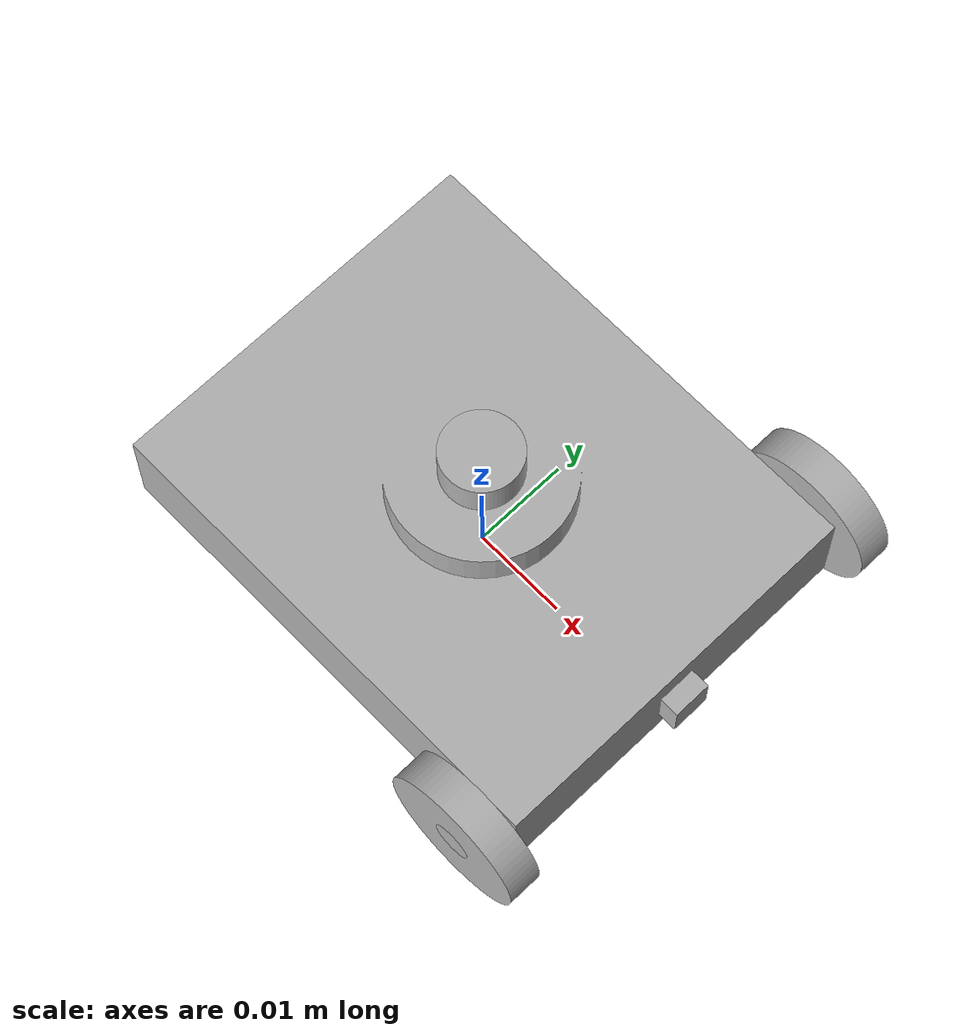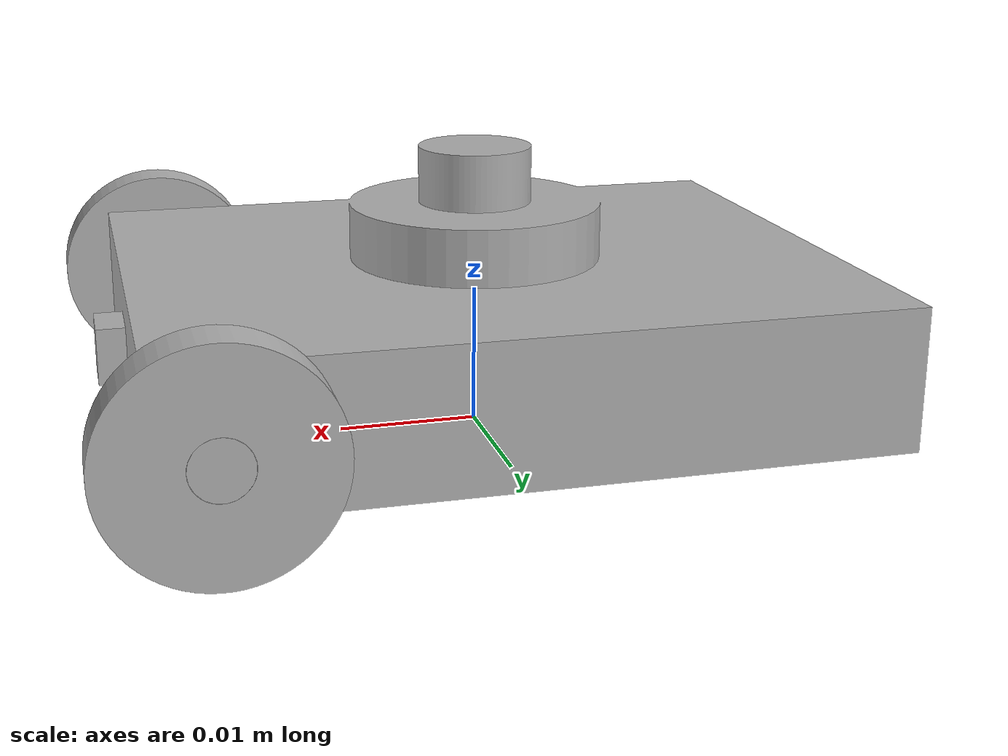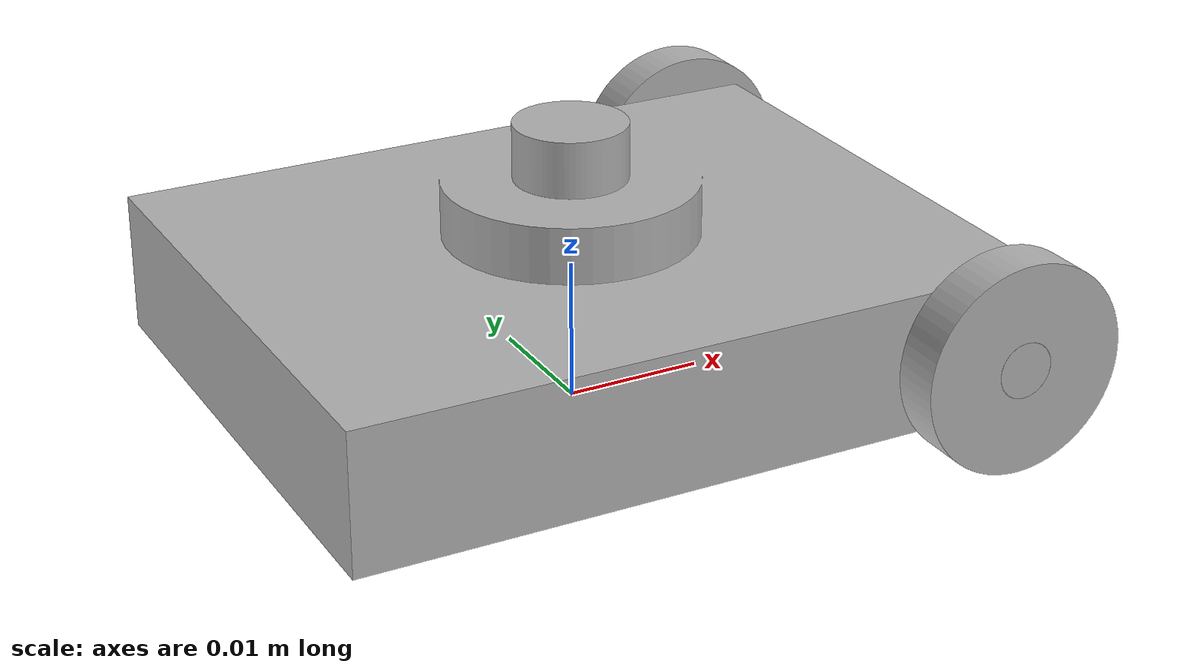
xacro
<?xml version="1.0" ?>
<robot name="sam_bot" xmlns:xacro="http://www.ros.org/wiki/xacro">

<xacro:include filename="$(find sam_bot_description)/urdf/materials.xacro" />
<xacro:include filename="$(find sam_bot_description)/urdf/sam_bot.trans" />
<xacro:include filename="$(find sam_bot_description)/urdf/sam_bot.gazebo" />
<link name="base_link">
  <inertial>
    <origin xyz="-1.1538674806553557e-05 2.767157223417654e-13 0.0077952514093595875" rpy="0 0 0"/>
    <mass value="0.16670841146895982"/>
    <inertia ixx="2.3e-05" iyy="3.5e-05" izz="5.5e-05" ixy="-0.0" iyz="0.0" ixz="-0.0"/>
  </inertial>
  <visual>
    <origin xyz="0 0 0" rpy="0 0 0"/>
    <geometry>
      <mesh filename="file://$(find sam_bot_description)/meshes/base_link.stl" scale="0.001 0.001 0.001"/>
    </geometry>
    <material name="silver"/>
  </visual>
  <collision>
    <origin xyz="0 0 0" rpy="0 0 0"/>
    <geometry>
      <mesh filename="file://$(find sam_bot_description)/meshes/base_link.stl" scale="0.001 0.001 0.001"/>
    </geometry>
  </collision>
</link>

<link name="left_wheel_1">
  <inertial>
    <origin xyz="1.6067008834497187e-14 -0.00174999999999996 1.9949319973733282e-17" rpy="0 0 0"/>
    <mass value="0.004509972238723067"/>
    <inertia ixx="0.0" iyy="0.0" izz="0.0" ixy="-0.0" iyz="0.0" ixz="0.0"/>
  </inertial>
  <visual>
    <origin xyz="-0.021 -0.024 -0.0075" rpy="0 0 0"/>
    <geometry>
      <mesh filename="file://$(find sam_bot_description)/meshes/left_wheel_1.stl" scale="0.001 0.001 0.001"/>
    </geometry>
    <material name="silver"/>
  </visual>
  <collision>
    <origin xyz="-0.021 -0.024 -0.0075" rpy="0 0 0"/>
    <geometry>
      <mesh filename="file://$(find sam_bot_description)/meshes/left_wheel_1.stl" scale="0.001 0.001 0.001"/>
    </geometry>
  </collision>
</link>

<link name="right_wheel_1">
  <inertial>
    <origin xyz="1.6067008834497187e-14 0.00174999999999996 6.938893903907228e-18" rpy="0 0 0"/>
    <mass value="0.004509972238723067"/>
    <inertia ixx="0.0" iyy="0.0" izz="0.0" ixy="0.0" iyz="0.0" ixz="0.0"/>
  </inertial>
  <visual>
    <origin xyz="-0.021 0.024 -0.0075" rpy="0 0 0"/>
    <geometry>
      <mesh filename="file://$(find sam_bot_description)/meshes/right_wheel_1.stl" scale="0.001 0.001 0.001"/>
    </geometry>
    <material name="silver"/>
  </visual>
  <collision>
    <origin xyz="-0.021 0.024 -0.0075" rpy="0 0 0"/>
    <geometry>
      <mesh filename="file://$(find sam_bot_description)/meshes/right_wheel_1.stl" scale="0.001 0.001 0.001"/>
    </geometry>
  </collision>
</link>

<link name="imu_link_1">
  <inertial>
    <origin xyz="0.0010000000000000703 9.263423361716054e-19 1.214306433183765e-17" rpy="0 0 0"/>
    <mass value="0.00025119999812841425"/>
    <inertia ixx="0.0" iyy="0.0" izz="0.0" ixy="-0.0" iyz="0.0" ixz="0.0"/>
  </inertial>
  <visual>
    <origin xyz="-0.025 -0.0 -0.0075" rpy="0 0 0"/>
    <geometry>
      <mesh filename="file://$(find sam_bot_description)/meshes/imu_link_1.stl" scale="0.001 0.001 0.001"/>
    </geometry>
    <material name="silver"/>
  </visual>
  <collision>
    <origin xyz="-0.025 -0.0 -0.0075" rpy="0 0 0"/>
    <geometry>
      <mesh filename="file://$(find sam_bot_description)/meshes/imu_link_1.stl" scale="0.001 0.001 0.001"/>
    </geometry>
  </collision>
</link>

<link name="lidar_link_1">
  <inertial>
    <origin xyz="3.635980405632155e-18 4.182700667547095e-13 0.0020000000000000226" rpy="0 0 0"/>
    <mass value="0.0015783361491635791"/>
    <inertia ixx="0.0" iyy="0.0" izz="0.0" ixy="-0.0" iyz="0.0" ixz="0.0"/>
  </inertial>
  <visual>
    <origin xyz="-0.0 0.0 -0.0165" rpy="0 0 0"/>
    <geometry>
      <mesh filename="file://$(find sam_bot_description)/meshes/lidar_link_1.stl" scale="0.001 0.001 0.001"/>
    </geometry>
    <material name="silver"/>
  </visual>
  <collision>
    <origin xyz="-0.0 0.0 -0.0165" rpy="0 0 0"/>
    <geometry>
      <mesh filename="file://$(find sam_bot_description)/meshes/lidar_link_1.stl" scale="0.001 0.001 0.001"/>
    </geometry>
  </collision>
</link>

<joint name="Revolute 1" type="continuous">
  <origin xyz="0.021 0.024 0.0075" rpy="0 0 0"/>
  <parent link="base_link"/>
  <child link="left_wheel_1"/>
  <axis xyz="-0.0 1.0 0.0"/>
</joint>

<joint name="Revolute 2" type="continuous">
  <origin xyz="0.021 -0.024 0.0075" rpy="0 0 0"/>
  <parent link="base_link"/>
  <child link="right_wheel_1"/>
  <axis xyz="-0.0 1.0 0.0"/>
</joint>

<joint name="Rigid 3" type="fixed">
  <origin xyz="0.025 0.0 0.0075" rpy="0 0 0"/>
  <parent link="base_link"/>
  <child link="imu_link_1"/>
</joint>

<joint name="Rigid 4" type="fixed">
  <origin xyz="0.0 0.0 0.0165" rpy="0 0 0"/>
  <parent link="base_link"/>
  <child link="lidar_link_1"/>
</joint>

</robot>

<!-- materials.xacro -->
<robot name="sam_bot" xmlns:xacro="http://www.ros.org/wiki/xacro" >

<material name="silver">
  <color rgba="0.700 0.700 0.700 1.000"/>
</material>

</robot>

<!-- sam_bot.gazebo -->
<robot name="sam_bot" xmlns:xacro="http://www.ros.org/wiki/xacro" >

<xacro:property name="body_color" value="Gazebo/Silver" />

<gazebo>
  <plugin name="control" filename="libgazebo_ros_control.so"/>
</gazebo>
<gazebo reference="base_link">
  <material>${body_color}</material>
  <mu1>0.2</mu1>
  <mu2>0.2</mu2>
  <self_collide>true</self_collide>
  <gravity>true</gravity>
</gazebo>

<gazebo reference="left_wheel_1">
  <material>${body_color}</material>
  <mu1>0.2</mu1>
  <mu2>0.2</mu2>
  <self_collide>true</self_collide>
</gazebo>

<gazebo reference="right_wheel_1">
  <material>${body_color}</material>
  <mu1>0.2</mu1>
  <mu2>0.2</mu2>
  <self_collide>true</self_collide>
</gazebo>

<gazebo reference="imu_link_1">
  <material>${body_color}</material>
  <mu1>0.2</mu1>
  <mu2>0.2</mu2>
  <self_collide>true</self_collide>
</gazebo>

<gazebo reference="lidar_link_1">
  <material>${body_color}</material>
  <mu1>0.2</mu1>
  <mu2>0.2</mu2>
  <self_collide>true</self_collide>
</gazebo>

</robot>
